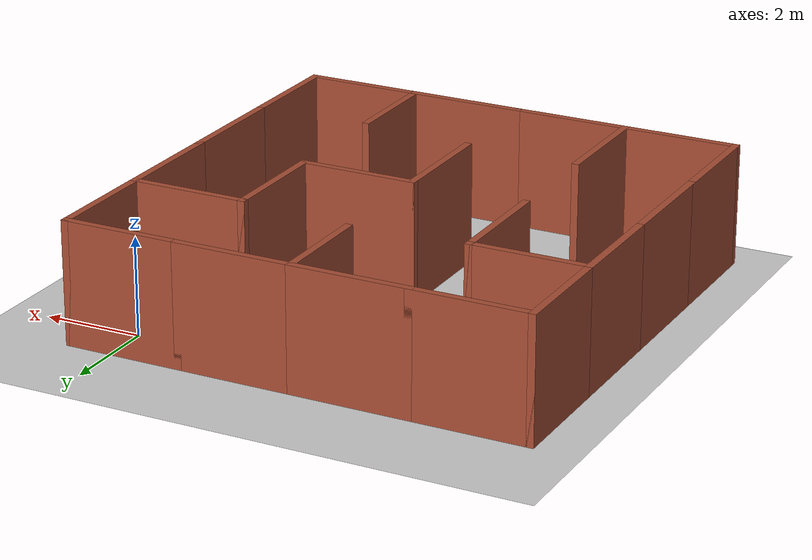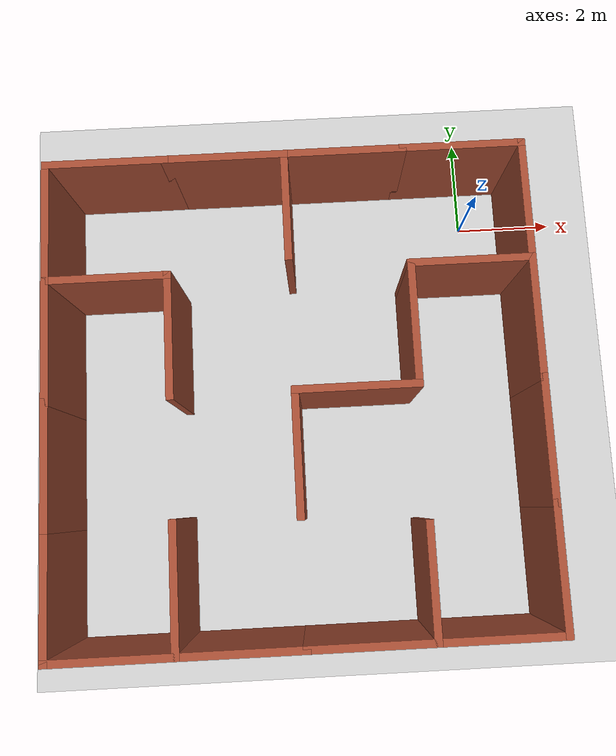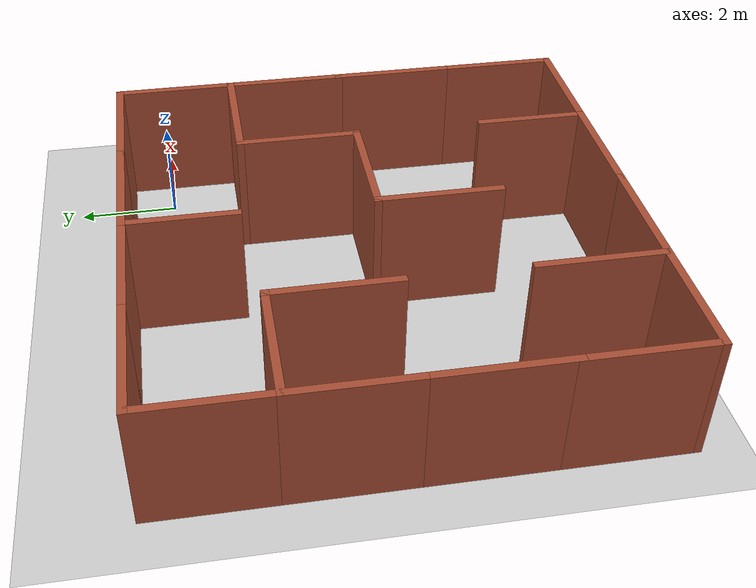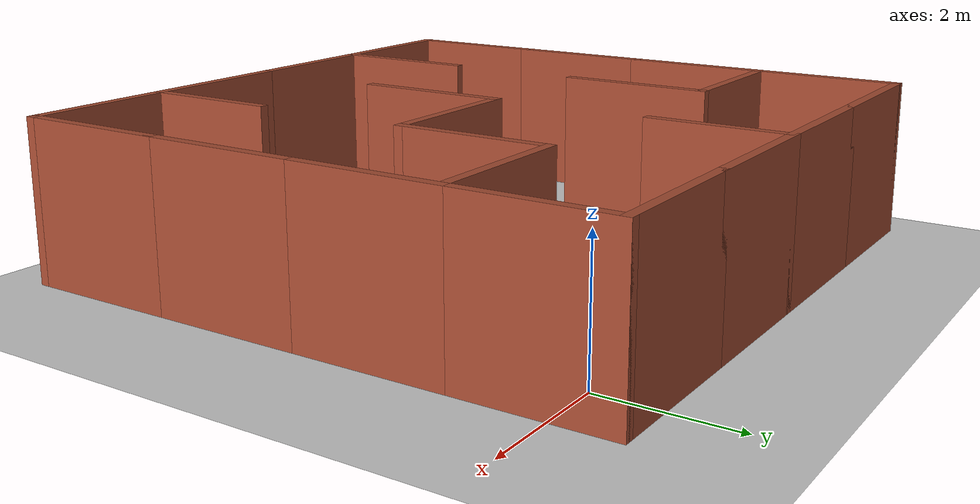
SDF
<sdf version="1.7">
 <world name="default">
  <light name="sun" type="directional">
   <pose>0 0 10 0 -0 0</pose>
   <diffuse>0.8 0.8 0.8 1</diffuse>
   <specular>0.2 0.2 0.2 1</specular>
   <attenuation>
    <range>1000</range>
    <constant>0.9</constant>
    <linear>0.01</linear>
    <quadratic>0.001</quadratic>
   </attenuation>
   <direction>-0.5 0.1 -0.9</direction>
   <spot><inner_angle>0</inner_angle><outer_angle>0</outer_angle><falloff>0</falloff></spot>
  </light>
  <model name="ground_plane">
   <static>1</static>
   <link name="link">
    <collision name="collision">
     <geometry><plane><normal>0 0 1</normal><size>100 100</size></plane></geometry>
     <surface><friction><ode><mu>100</mu><mu2>50</mu2></ode></friction></surface>
    </collision>
    <visual name="visual">
     <cast_shadows>0</cast_shadows>
     <geometry><plane><normal>0 0 1</normal><size>100 100</size></plane></geometry>
     <material>
      <script><uri>file://media/materials/scripts/gazebo.material</uri><name>Gazebo/Grey</name></script>
     </material>
    </visual>
   </link>
  </model>
  <gravity>0 0 -9.8</gravity>
  <magnetic_field>6e-06 2.3e-05 -4.2e-05</magnetic_field>
  <atmosphere type="adiabatic"/>
  <physics type="ode">
   <max_step_size>0.001</max_step_size>
   <real_time_factor>1</real_time_factor>
   <real_time_update_rate>1000</real_time_update_rate>
  </physics>
  <scene><ambient>0.4 0.4 0.4 1</ambient><background>0.7 0.7 0.7 1</background><shadows>1</shadows></scene>
  <audio><device>default</device></audio>
  <spherical_coordinates>
   <surface_model>EARTH_WGS84</surface_model>
   <latitude_deg>0</latitude_deg>
   <longitude_deg>0</longitude_deg>
   <elevation>0</elevation>
   <heading_deg>0</heading_deg>
  </spherical_coordinates>
  <model name="gazebo_laberynth">
   <pose>-3.80895 -3.79414 0 0 -0 0</pose>
   <link name="Wall_16">
    <collision name="Wall_16_Collision">
     <geometry><box><size>2.5 0.15 2.5</size></box></geometry>
     <pose>0 0 1.25 0 -0 0</pose>
    </collision>
    <visual name="Wall_16_Visual">
     <pose>0 0 1.25 0 -0 0</pose>
     <geometry><box><size>2.5 0.15 2.5</size></box></geometry>
     <material>
      <script><uri>file://media/materials/scripts/gazebo.material</uri><name>Gazebo/Bricks</name></script>
      <ambient>1 1 1 1</ambient>
     </material>
     <meta><layer>0</layer></meta>
    </visual>
    <pose>3.525 4.7 0 0 -0 0</pose>
   </link>
   <link name="Wall_17">
    <collision name="Wall_17_Collision">
     <geometry><box><size>2.5 0.15 2.5</size></box></geometry>
     <pose>0 0 1.25 0 -0 0</pose>
    </collision>
    <visual name="Wall_17_Visual">
     <pose>0 0 1.25 0 -0 0</pose>
     <geometry><box><size>2.5 0.15 2.5</size></box></geometry>
     <material>
      <script><uri>file://media/materials/scripts/gazebo.material</uri><name>Gazebo/Bricks</name></script>
      <ambient>1 1 1 1</ambient>
     </material>
     <meta><layer>0</layer></meta>
    </visual>
    <pose>4.7 3.525 0 0 -0 -1.5708</pose>
   </link>
   <link name="Wall_25">
    <collision name="Wall_25_Collision">
     <geometry><box><size>2.5 0.15 2.5</size></box></geometry>
     <pose>0 0 1.25 0 -0 0</pose>
    </collision>
    <visual name="Wall_25_Visual">
     <pose>0 0 1.25 0 -0 0</pose>
     <geometry><box><size>2.5 0.15 2.5</size></box></geometry>
     <material>
      <script><uri>file://media/materials/scripts/gazebo.material</uri><name>Gazebo/Bricks</name></script>
      <ambient>1 1 1 1</ambient>
     </material>
     <meta><layer>0</layer></meta>
    </visual>
    <pose>1.175 -4.7 0 0 -0 3.14159</pose>
   </link>
   <link name="Wall_27">
    <collision name="Wall_27_Collision">
     <geometry><box><size>2.5 0.15 2.5</size></box></geometry>
     <pose>0 0 1.25 0 -0 0</pose>
    </collision>
    <visual name="Wall_27_Visual">
     <pose>0 0 1.25 0 -0 0</pose>
     <geometry><box><size>2.5 0.15 2.5</size></box></geometry>
     <material>
      <script><uri>file://media/materials/scripts/gazebo.material</uri><name>Gazebo/Bricks</name></script>
      <ambient>1 1 1 1</ambient>
     </material>
     <meta><layer>0</layer></meta>
    </visual>
    <pose>-3.525 -4.7 0 0 -0 3.14159</pose>
   </link>
   <link name="Wall_28">
    <collision name="Wall_28_Collision">
     <geometry><box><size>2.5 0.15 2.5</size></box></geometry>
     <pose>0 0 1.25 0 -0 0</pose>
    </collision>
    <visual name="Wall_28_Visual">
     <pose>0 0 1.25 0 -0 0</pose>
     <geometry><box><size>2.5 0.15 2.5</size></box></geometry>
     <material>
      <script><uri>file://media/materials/scripts/gazebo.material</uri><name>Gazebo/Bricks</name></script>
      <ambient>1 1 1 1</ambient>
     </material>
     <meta><layer>0</layer></meta>
    </visual>
    <pose>-4.7 -3.525 0 0 -0 1.5708</pose>
   </link>
   <link name="Wall_29">
    <collision name="Wall_29_Collision">
     <geometry><box><size>2.5 0.15 2.5</size></box></geometry>
     <pose>0 0 1.25 0 -0 0</pose>
    </collision>
    <visual name="Wall_29_Visual">
     <pose>0 0 1.25 0 -0 0</pose>
     <geometry><box><size>2.5 0.15 2.5</size></box></geometry>
     <material>
      <script><uri>file://media/materials/scripts/gazebo.material</uri><name>Gazebo/Bricks</name></script>
      <ambient>1 1 1 1</ambient>
     </material>
     <meta><layer>0</layer></meta>
    </visual>
    <pose>-4.7 -1.175 0 0 -0 1.5708</pose>
   </link>
   <link name="Wall_30">
    <collision name="Wall_30_Collision">
     <geometry><box><size>2.5 0.15 2.5</size></box></geometry>
     <pose>0 0 1.25 0 -0 0</pose>
    </collision>
    <visual name="Wall_30_Visual">
     <pose>0 0 1.25 0 -0 0</pose>
     <geometry><box><size>2.5 0.15 2.5</size></box></geometry>
     <material>
      <script><uri>file://media/materials/scripts/gazebo.material</uri><name>Gazebo/Bricks</name></script>
      <ambient>1 1 1 1</ambient>
     </material>
     <meta><layer>0</layer></meta>
    </visual>
    <pose>-4.7 1.175 0 0 -0 1.5708</pose>
   </link>
   <link name="Wall_31">
    <collision name="Wall_31_Collision">
     <geometry><box><size>2.5 0.15 2.5</size></box></geometry>
     <pose>0 0 1.25 0 -0 0</pose>
    </collision>
    <visual name="Wall_31_Visual">
     <pose>0 0 1.25 0 -0 0</pose>
     <geometry><box><size>2.5 0.15 2.5</size></box></geometry>
     <material>
      <script><uri>file://media/materials/scripts/gazebo.material</uri><name>Gazebo/Bricks</name></script>
      <ambient>1 1 1 1</ambient>
     </material>
     <meta><layer>0</layer></meta>
    </visual>
    <pose>-4.7 3.525 0 0 -0 1.5708</pose>
   </link>
   <link name="Wall_32">
    <collision name="Wall_32_Collision">
     <geometry><box><size>2.5 0.15 2.5</size></box></geometry>
     <pose>0 0 1.25 0 -0 0</pose>
    </collision>
    <visual name="Wall_32_Visual">
     <pose>0 0 1.25 0 -0 0</pose>
     <geometry><box><size>2.5 0.15 2.5</size></box></geometry>
     <material>
      <script><uri>file://media/materials/scripts/gazebo.material</uri><name>Gazebo/Bricks</name></script>
      <ambient>1 1 1 1</ambient>
     </material>
     <meta><layer>0</layer></meta>
    </visual>
    <pose>-3.525 4.7 0 0 -0 0</pose>
   </link>
   <link name="Wall_33">
    <collision name="Wall_33_Collision">
     <geometry><box><size>2.5 0.15 2.5</size></box></geometry>
     <pose>0 0 1.25 0 -0 0</pose>
    </collision>
    <visual name="Wall_33_Visual">
     <pose>0 0 1.25 0 -0 0</pose>
     <geometry><box><size>2.5 0.15 2.5</size></box></geometry>
     <material>
      <script><uri>file://media/materials/scripts/gazebo.material</uri><name>Gazebo/Bricks</name></script>
      <ambient>1 1 1 1</ambient>
     </material>
     <meta><layer>0</layer></meta>
    </visual>
    <pose>-1.175 4.7 0 0 -0 0</pose>
   </link>
   <link name="Wall_34">
    <collision name="Wall_34_Collision">
     <geometry><box><size>2.5 0.15 2.5</size></box></geometry>
     <pose>0 0 1.25 0 -0 0</pose>
    </collision>
    <visual name="Wall_34_Visual">
     <pose>0 0 1.25 0 -0 0</pose>
     <geometry><box><size>2.5 0.15 2.5</size></box></geometry>
     <material>
      <script><uri>file://media/materials/scripts/gazebo.material</uri><name>Gazebo/Bricks</name></script>
      <ambient>1 1 1 1</ambient>
     </material>
     <meta><layer>0</layer></meta>
    </visual>
    <pose>1.175 4.7 0 0 -0 0</pose>
   </link>
   <link name="Wall_41">
    <collision name="Wall_41_Collision">
     <geometry><box><size>2.5 0.15 2.5</size></box></geometry>
     <pose>0 0 1.25 0 -0 0</pose>
    </collision>
    <visual name="Wall_41_Visual">
     <pose>0 0 1.25 0 -0 0</pose>
     <geometry><box><size>2.5 0.15 2.5</size></box></geometry>
     <material>
      <script><uri>file://media/materials/scripts/gazebo.material</uri><name>Gazebo/Bricks</name></script>
      <ambient>1 1 1 1</ambient>
     </material>
     <meta><layer>0</layer></meta>
    </visual>
    <pose>3.525 2.35 0 0 -0 3.14159</pose>
   </link>
   <link name="Wall_42">
    <collision name="Wall_42_Collision">
     <geometry><box><size>2.5 0.15 2.5</size></box></geometry>
     <pose>0 0 1.25 0 -0 0</pose>
    </collision>
    <visual name="Wall_42_Visual">
     <pose>0 0 1.25 0 -0 0</pose>
     <geometry><box><size>2.5 0.15 2.5</size></box></geometry>
     <material>
      <script><uri>file://media/materials/scripts/gazebo.material</uri><name>Gazebo/Bricks</name></script>
      <ambient>1 1 1 1</ambient>
     </material>
     <meta><layer>0</layer></meta>
    </visual>
    <pose>2.35 1.175 0 0 -0 -1.5708</pose>
   </link>
   <link name="Wall_51">
    <collision name="Wall_51_Collision">
     <geometry><box><size>2.5 0.15 2.5</size></box></geometry>
     <pose>0 0 1.25 0 -0 0</pose>
    </collision>
    <visual name="Wall_51_Visual">
     <pose>0 0 1.25 0 -0 0</pose>
     <geometry><box><size>2.5 0.15 2.5</size></box></geometry>
     <material>
      <script><uri>file://media/materials/scripts/gazebo.material</uri><name>Gazebo/Bricks</name></script>
      <ambient>1 1 1 1</ambient>
     </material>
     <meta><layer>0</layer></meta>
    </visual>
    <pose>-2.35 -3.525 0 0 -0 1.5708</pose>
   </link>
   <link name="Wall_56">
    <collision name="Wall_56_Collision">
     <geometry><box><size>2.5 0.15 2.5</size></box></geometry>
     <pose>0 0 1.25 0 -0 0</pose>
    </collision>
    <visual name="Wall_56_Visual">
     <pose>0 0 1.25 0 -0 0</pose>
     <geometry><box><size>2.5 0.15 2.5</size></box></geometry>
     <material>
      <script><uri>file://media/materials/scripts/gazebo.material</uri><name>Gazebo/Bricks</name></script>
      <ambient>1 1 1 1</ambient>
     </material>
     <meta><layer>0</layer></meta>
    </visual>
    <pose>-3.525 2.35 0 0 -0 0</pose>
   </link>
   <link name="Wall_57">
    <collision name="Wall_57_Collision">
     <geometry><box><size>2.5 0.15 2.5</size></box></geometry>
     <pose>0 0 1.25 0 -0 0</pose>
    </collision>
    <visual name="Wall_57_Visual">
     <pose>0 0 1.25 0 -0 0</pose>
     <geometry><box><size>2.5 0.15 2.5</size></box></geometry>
     <material>
      <script><uri>file://media/materials/scripts/gazebo.material</uri><name>Gazebo/Bricks</name></script>
      <ambient>1 1 1 1</ambient>
     </material>
     <meta><layer>0</layer></meta>
    </visual>
    <pose>-2.35 1.175 0 0 -0 -1.5708</pose>
   </link>
   <link name="Wall_62">
    <collision name="Wall_62_Collision">
     <geometry><box><size>2.25 0.15 2.5</size></box></geometry>
     <pose>0 0 1.25 0 -0 0</pose>
    </collision>
    <visual name="Wall_62_Visual">
     <pose>0 0 1.25 0 -0 0</pose>
     <geometry><box><size>2.25 0.15 2.5</size></box></geometry>
     <material>
      <script><uri>file://media/materials/scripts/gazebo.material</uri><name>Gazebo/Bricks</name></script>
      <ambient>1 1 1 1</ambient>
     </material>
     <meta><layer>0</layer></meta>
    </visual>
    <pose>0 3.65 0 0 -0 1.5708</pose>
   </link>
   <link name="Wall_64">
    <collision name="Wall_64_Collision">
     <geometry><box><size>2.5 0.15 2.5</size></box></geometry>
     <pose>0 0 1.25 0 -0 0</pose>
    </collision>
    <visual name="Wall_64_Visual">
     <pose>0 0 1.25 0 -0 0</pose>
     <geometry><box><size>2.5 0.15 2.5</size></box></geometry>
     <material>
      <script><uri>file://media/materials/scripts/gazebo.material</uri><name>Gazebo/Bricks</name></script>
      <ambient>1 1 1 1</ambient>
     </material>
     <meta><layer>0</layer></meta>
    </visual>
    <pose>1.175 0 0 0 -0 3.14159</pose>
   </link>
   <link name="Wall_65">
    <collision name="Wall_65_Collision">
     <geometry><box><size>2.5 0.15 2.5</size></box></geometry>
     <pose>0 0 1.25 0 -0 0</pose>
    </collision>
    <visual name="Wall_65_Visual">
     <pose>0 0 1.25 0 -0 0</pose>
     <geometry><box><size>2.5 0.15 2.5</size></box></geometry>
     <material>
      <script><uri>file://media/materials/scripts/gazebo.material</uri><name>Gazebo/Bricks</name></script>
      <ambient>1 1 1 1</ambient>
     </material>
     <meta><layer>0</layer></meta>
    </visual>
    <pose>0 -1.175 0 0 -0 -1.5708</pose>
   </link>
   <link name="Wall_67">
    <collision name="Wall_67_Collision">
     <geometry><box><size>2.5 0.15 2.5</size></box></geometry>
     <pose>0 0 1.25 0 -0 0</pose>
    </collision>
    <visual name="Wall_67_Visual">
     <pose>0 0 1.25 0 -0 0</pose>
     <geometry><box><size>2.5 0.15 2.5</size></box></geometry>
     <material>
      <script><uri>file://media/materials/scripts/gazebo.material</uri><name>Gazebo/Bricks</name></script>
      <ambient>1 1 1 1</ambient>
     </material>
     <meta><layer>0</layer></meta>
    </visual>
    <pose>-1.175 -4.7 0 0 -0 0</pose>
   </link>
   <link name="Wall_71">
    <collision name="Wall_71_Collision">
     <geometry><box><size>2.5 0.15 2.5</size></box></geometry>
     <pose>0 0 1.25 0 -0 0</pose>
    </collision>
    <visual name="Wall_71_Visual">
     <pose>0 0 1.25 0 -0 0</pose>
     <geometry><box><size>2.5 0.15 2.5</size></box></geometry>
     <material>
      <script><uri>file://media/materials/scripts/gazebo.material</uri><name>Gazebo/Bricks</name></script>
      <ambient>1 1 1 1</ambient>
     </material>
     <meta><layer>0</layer></meta>
    </visual>
    <pose>4.7 1.175 0 0 -0 -1.5708</pose>
   </link>
   <link name="Wall_72">
    <collision name="Wall_72_Collision">
     <geometry><box><size>2.5 0.15 2.5</size></box></geometry>
     <pose>0 0 1.25 0 -0 0</pose>
    </collision>
    <visual name="Wall_72_Visual">
     <pose>0 0 1.25 0 -0 0</pose>
     <geometry><box><size>2.5 0.15 2.5</size></box></geometry>
     <material>
      <script><uri>file://media/materials/scripts/gazebo.material</uri><name>Gazebo/Bricks</name></script>
      <ambient>1 1 1 1</ambient>
     </material>
     <meta><layer>0</layer></meta>
    </visual>
    <pose>4.7 -1.175 0 0 -0 -1.5708</pose>
   </link>
   <link name="Wall_73">
    <collision name="Wall_73_Collision">
     <geometry><box><size>2.5 0.15 2.5</size></box></geometry>
     <pose>0 0 1.25 0 -0 0</pose>
    </collision>
    <visual name="Wall_73_Visual">
     <pose>0 0 1.25 0 -0 0</pose>
     <geometry><box><size>2.5 0.15 2.5</size></box></geometry>
     <material>
      <script><uri>file://media/materials/scripts/gazebo.material</uri><name>Gazebo/Bricks</name></script>
      <ambient>1 1 1 1</ambient>
     </material>
     <meta><layer>0</layer></meta>
    </visual>
    <pose>4.7 -3.525 0 0 -0 -1.5708</pose>
   </link>
   <link name="Wall_74">
    <collision name="Wall_74_Collision">
     <geometry><box><size>2.5 0.15 2.5</size></box></geometry>
     <pose>0 0 1.25 0 -0 0</pose>
    </collision>
    <visual name="Wall_74_Visual">
     <pose>0 0 1.25 0 -0 0</pose>
     <geometry><box><size>2.5 0.15 2.5</size></box></geometry>
     <material>
      <script><uri>file://media/materials/scripts/gazebo.material</uri><name>Gazebo/Bricks</name></script>
      <ambient>1 1 1 1</ambient>
     </material>
     <meta><layer>0</layer></meta>
    </visual>
    <pose>3.525 -4.7 0 0 -0 3.14159</pose>
   </link>
   <link name="Wall_75">
    <collision name="Wall_75_Collision">
     <geometry><box><size>2.25 0.15 2.5</size></box></geometry>
     <pose>0 0 1.25 0 -0 0</pose>
    </collision>
    <visual name="Wall_75_Visual">
     <pose>0 0 1.25 0 -0 0</pose>
     <geometry><box><size>2.25 0.15 2.5</size></box></geometry>
     <material>
      <script><uri>file://media/materials/scripts/gazebo.material</uri><name>Gazebo/Bricks</name></script>
      <ambient>1 1 1 1</ambient>
     </material>
     <meta><layer>0</layer></meta>
    </visual>
    <pose>2.35 -3.65 0 0 -0 1.5708</pose>
   </link>
   <static>1</static>
  </model>
 </world>
</sdf>
